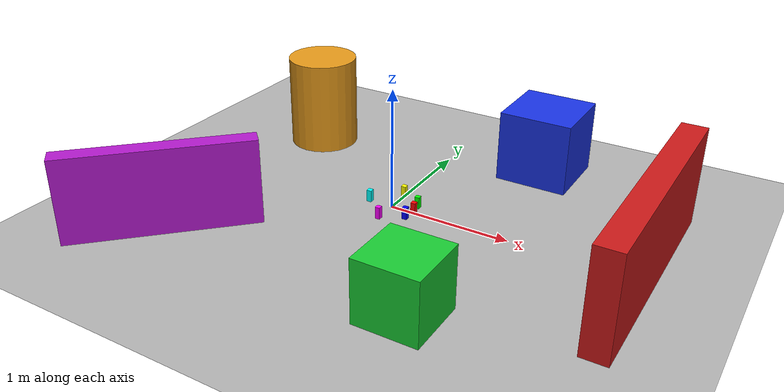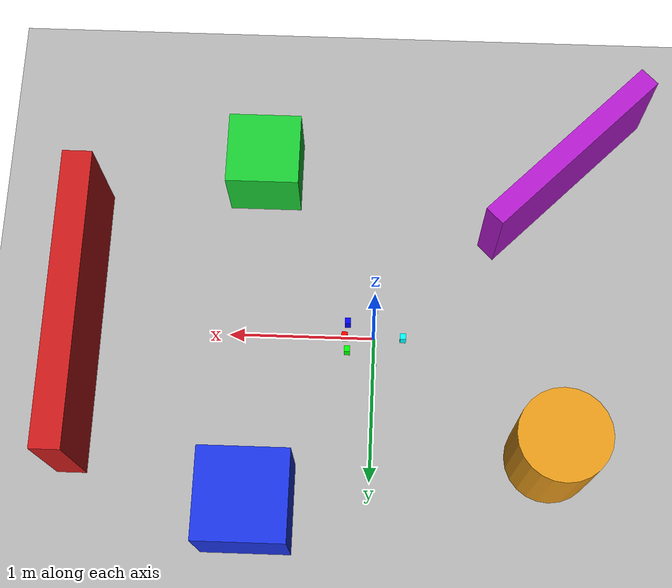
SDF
<?xml version="1.0"?>

<sdf version="1.10">

    <world name="pista">

        <physics name="1ms" type="ignored">

            <max_step_size>0.001</max_step_size>

            <real_time_factor>1.0</real_time_factor>

        </physics>

        <plugin
            filename="gz-sim-physics-system"
            name="gz::sim::systems::Physics"/>

        <plugin
            filename="gz-sim-user-commands-system"
            name="gz::sim::systems::UserCommands"/>

        <plugin
            filename="gz-sim-scene-broadcaster-system"
            name="gz::sim::systems::SceneBroadcaster"/>

	<plugin
    filename="gz-sim-sensors-system"
    name="gz::sim::systems::Sensors">

    <render_engine>ogre2</render_engine>

</plugin>

        <light type="directional" name="sun">

            <pose>0 0 10 0 0 0</pose>

            <cast_shadows>true</cast_shadows>

            <direction>-0.5 0.1 -0.9</direction>

        </light>

        <model name="ground">

            <static>true</static>

            <link name="ground_link">

                <collision name="collision">

                    <geometry>

                        <plane>

                            <normal>0 0 1</normal>

                            <size>20 20</size>

                        </plane>

                    </geometry>

                </collision>

                <visual name="visual">

                    <geometry>

                        <plane>

                            <normal>0 0 1</normal>

                            <size>20 20</size>

                        </plane>

                    </geometry>

                    <material>

                        <ambient>0.7 0.7 0.7 1</ambient>

                        <diffuse>0.7 0.7 0.7 1</diffuse>

                    </material>

                </visual>

            </link>

        </model>

<!-- OBSTÁCULO 1 - PAREDE FRONTAL                      -->

<model name="parede_frontal">

    <static>true</static>

    <!-- x y z roll pitch yaw -->
    <pose>2.0 0 0.40 0 0 0</pose>

    <link name="link">

        <collision name="collision">
            <geometry>
                <box>
                    <size>0.20 2.00 0.80</size>
                </box>
            </geometry>
        </collision>

        <visual name="visual">
            <geometry>
                <box>
                    <size>0.20 2.00 0.80</size>
                </box>
            </geometry>

            <material>
                <ambient>0.8 0.1 0.1 1</ambient>
                <diffuse>0.8 0.1 0.1 1</diffuse>
            </material>
        </visual>

    </link>

</model>

<!-- OBSTÁCULO 2 - CAIXA À ESQUERDA                    -->

<model name="caixa_esquerda">

    <static>true</static>

    <pose>0.8 1.2 0.30 0 0 0</pose>

    <link name="link">

        <collision name="collision">
            <geometry>
                <box>
                    <size>0.60 0.60 0.60</size>
                </box>
            </geometry>
        </collision>

        <visual name="visual">
            <geometry>
                <box>
                    <size>0.60 0.60 0.60</size>
                </box>
            </geometry>

            <material>
                <ambient>0.1 0.2 0.9 1</ambient>
                <diffuse>0.1 0.2 0.9 1</diffuse>
            </material>
        </visual>

    </link>

</model>

<!-- OBSTÁCULO 3 - CAIXA À DIREITA                     -->

<model name="caixa_direita">

    <static>true</static>

    <pose>0.8 -1.2 0.25 0 0 0</pose>

    <link name="link">

        <collision name="collision">
            <geometry>
                <box>
                    <size>0.50 0.50 0.50</size>
                </box>
            </geometry>
        </collision>

        <visual name="visual">
            <geometry>
                <box>
                    <size>0.50 0.50 0.50</size>
                </box>
            </geometry>

            <material>
                <ambient>0.1 0.8 0.2 1</ambient>
                <diffuse>0.1 0.8 0.2 1</diffuse>
            </material>
        </visual>

    </link>

</model>

<!-- OBSTÁCULO 4 - CILINDRO                            -->

<model name="cilindro">

    <static>true</static>

    <pose>-1.2 0.8 0.40 0 0 0</pose>

    <link name="link">

        <collision name="collision">
            <geometry>
                <cylinder>
                    <radius>0.30</radius>
                    <length>0.80</length>
                </cylinder>
            </geometry>
        </collision>

        <visual name="visual">
            <geometry>
                <cylinder>
                    <radius>0.30</radius>
                    <length>0.80</length>
                </cylinder>
            </geometry>

            <material>
                <ambient>0.9 0.6 0.1 1</ambient>
                <diffuse>0.9 0.6 0.1 1</diffuse>
            </material>
        </visual>

    </link>

</model>

<!-- OBSTÁCULO 5 - PAREDE DIAGONAL                     -->

<model name="parede_diagonal">

    <static>true</static>

    <!-- yaw = aproximadamente 45 graus -->
    <pose>-1.3 -1.2 0.35 0 0 0.7854</pose>

    <link name="link">

        <collision name="collision">
            <geometry>
                <box>
                    <size>1.50 0.15 0.70</size>
                </box>
            </geometry>
        </collision>

        <visual name="visual">
            <geometry>
                <box>
                    <size>1.50 0.15 0.70</size>
                </box>
            </geometry>

            <material>
                <ambient>0.7 0.1 0.8 1</ambient>
                <diffuse>0.7 0.1 0.8 1</diffuse>
            </material>
        </visual>

    </link>

</model>

<!-- TESTE SENSOR: ToF FRONTAL                          -->

<model name="teste_tof_front">
    <static>true</static>

    <pose>0.202 0.000 0.050 0 0 0</pose>

    <link name="link">

        <collision name="collision">
            <geometry>
                <box>
                    <size>0.040 0.040 0.100</size>
                </box>
            </geometry>
        </collision>

        <visual name="visual">
            <geometry>
                <box>
                    <size>0.040 0.040 0.100</size>
                </box>
            </geometry>

            <material>
                <ambient>1 0 0 1</ambient>
                <diffuse>1 0 0 1</diffuse>
            </material>
        </visual>

    </link>
</model>

<!-- Sharp frontal esquerdo +30 graus -->

<model name="teste_sharp_front_left">
    <static>true</static>

    <pose>0.182 0.100 0.050 0 0 0</pose>

    <link name="link">

        <collision name="collision">
            <geometry>
                <box>
                    <size>0.040 0.040 0.100</size>
                </box>
            </geometry>
        </collision>

        <visual name="visual">
            <geometry>
                <box>
                    <size>0.040 0.040 0.100</size>
                </box>
            </geometry>

            <material>
                <ambient>0 1 0 1</ambient>
                <diffuse>0 1 0 1</diffuse>
            </material>
        </visual>

    </link>
</model>

<!-- Sharp frontal direito -30 graus -->

<model name="teste_sharp_front_right">
    <static>true</static>

    <pose>0.182 -0.100 0.050 0 0 0</pose>

    <link name="link">

        <collision name="collision">
            <geometry>
                <box>
                    <size>0.040 0.040 0.100</size>
                </box>
            </geometry>
        </collision>

        <visual name="visual">
            <geometry>
                <box>
                    <size>0.040 0.040 0.100</size>
                </box>
            </geometry>

            <material>
                <ambient>0 0 1 1</ambient>
                <diffuse>0 0 1 1</diffuse>
            </material>
        </visual>

    </link>
</model>

<!-- Sharp lateral esquerdo +90 graus -->

<model name="teste_sharp_left">
    <static>true</static>

    <pose>0.000 0.202 0.050 0 0 0</pose>

    <link name="link">

        <collision name="collision">
            <geometry>
                <box>
                    <size>0.040 0.040 0.100</size>
                </box>
            </geometry>
        </collision>

        <visual name="visual">
            <geometry>
                <box>
                    <size>0.040 0.040 0.100</size>
                </box>
            </geometry>

            <material>
                <ambient>1 1 0 1</ambient>
                <diffuse>1 1 0 1</diffuse>
            </material>
        </visual>

    </link>
</model>

<!-- Sharp lateral direito -90 graus -->

<model name="teste_sharp_right">
    <static>true</static>

    <pose>0.000 -0.202 0.050 0 0 0</pose>

    <link name="link">

        <collision name="collision">
            <geometry>
                <box>
                    <size>0.040 0.040 0.100</size>
                </box>
            </geometry>
        </collision>

        <visual name="visual">
            <geometry>
                <box>
                    <size>0.040 0.040 0.100</size>
                </box>
            </geometry>

            <material>
                <ambient>1 0 1 1</ambient>
                <diffuse>1 0 1 1</diffuse>
            </material>
        </visual>

    </link>
</model>

<!-- Sharp traseiro 180 graus -->

<model name="teste_sharp_rear">
    <static>true</static>

    <pose>-0.202 0.000 0.050 0 0 0</pose>

    <link name="link">

        <collision name="collision">
            <geometry>
                <box>
                    <size>0.040 0.040 0.100</size>
                </box>
            </geometry>
        </collision>

        <visual name="visual">
            <geometry>
                <box>
                    <size>0.040 0.040 0.100</size>
                </box>
            </geometry>

            <material>
                <ambient>0 1 1 1</ambient>
                <diffuse>0 1 1 1</diffuse>
            </material>
        </visual>

    </link>
</model>

    </world>

</sdf>
